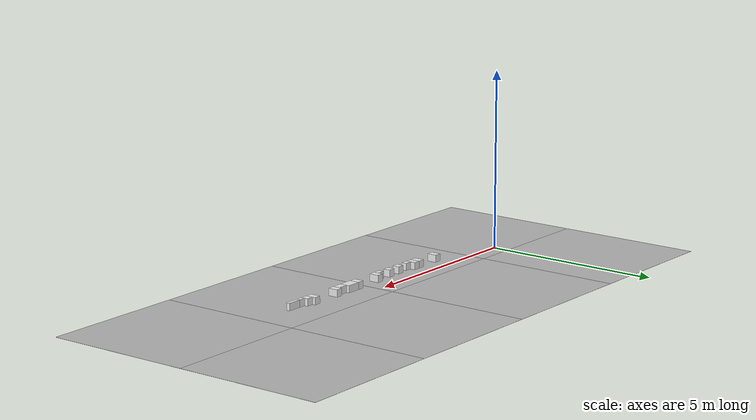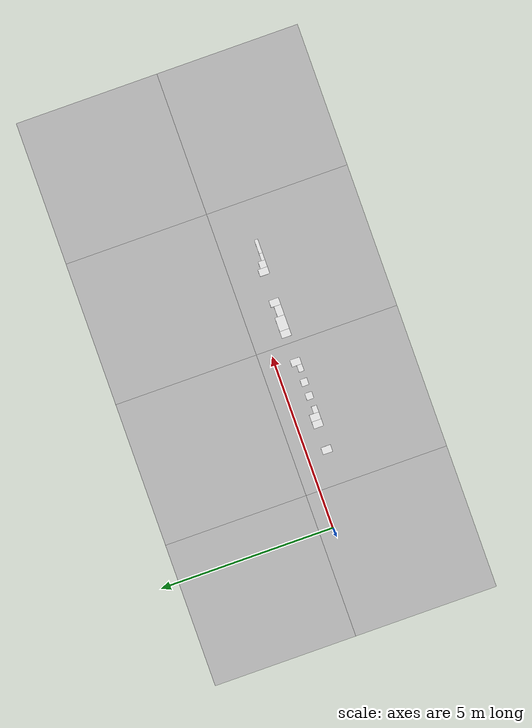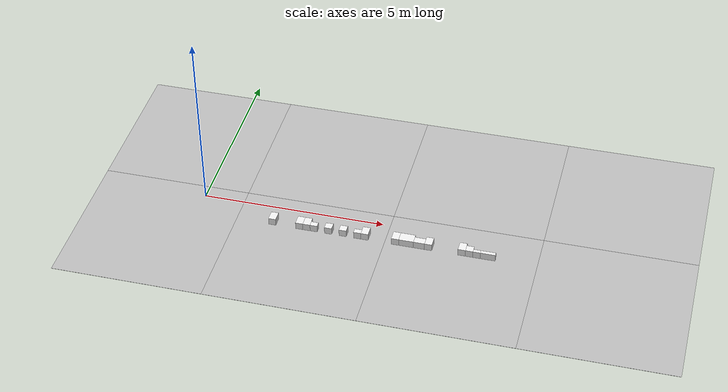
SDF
<sdf version='1.6'><world name='default'>
    <light name='sun_light' type='directional'>
      <pose frame=''>0 0 10 0 -0 0</pose>
      <diffuse>0.5 0.5 0.5 1</diffuse>
      <specular>0.1 0.1 0.1 1</specular>
      <direction>0.1 0.1 -0.9</direction>
      <attenuation>
        <range>20</range>
        <constant>0.5</constant>
        <linear>0.01</linear>
        <quadratic>0.001</quadratic>
      </attenuation>
      <cast_shadows>1</cast_shadows>
    </light>

    <model name='Tile/0-0'>
      <static>1</static>
      <link name='link'>
        <collision name='collision'>
          <geometry>
            <plane>
              <normal>0 0 1</normal>
              <size>4.096 4.096</size>
            </plane>
          </geometry>
          <surface>
            <friction>
              <ode>
                <mu>100</mu>
                <mu2>50</mu2>
              </ode>
              <torsional>
                <ode/>
              </torsional>
            </friction>
            <contact>
              <ode/>
            </contact>
            <bounce/>
          </surface>
          <max_contacts>10</max_contacts>
        </collision>
        <visual name='visual'>
          <cast_shadows>0</cast_shadows>
          <geometry>
            <plane>
              <normal>0 0 1</normal>
              <size>4.096 4.096</size>
            </plane>
          </geometry>
          <material>
            <script>
              <uri>file://materials/scripts</uri>
              <uri>file://materials/textures</uri>
              <name>Tile/aa44efc093d15b0d016b671cb8dad8b9b5925cd42bc6b331ef31decf4ba6863e</name>
            </script>
          </material>
        </visual>
        <self_collide>0</self_collide>
        <enable_wind>0</enable_wind>
        <kinematic>0</kinematic>
      </link>
      <pose frame=''>-0.952 -1.6520000000000001 0 0 -0 0</pose>
    </model>

    <model name='Tile/0-1'>
      <static>1</static>
      <link name='link'>
        <collision name='collision'>
          <geometry>
            <plane>
              <normal>0 0 1</normal>
              <size>4.096 4.096</size>
            </plane>
          </geometry>
          <surface>
            <friction>
              <ode>
                <mu>100</mu>
                <mu2>50</mu2>
              </ode>
              <torsional>
                <ode/>
              </torsional>
            </friction>
            <contact>
              <ode/>
            </contact>
            <bounce/>
          </surface>
          <max_contacts>10</max_contacts>
        </collision>
        <visual name='visual'>
          <cast_shadows>0</cast_shadows>
          <geometry>
            <plane>
              <normal>0 0 1</normal>
              <size>4.096 4.096</size>
            </plane>
          </geometry>
          <material>
            <script>
              <uri>file://materials/scripts</uri>
              <uri>file://materials/textures</uri>
              <name>Tile/6681b896b1587d54cb69aadeb5fb7247b4d6d500490292053e67105ac88ca889</name>
            </script>
          </material>
        </visual>
        <self_collide>0</self_collide>
        <enable_wind>0</enable_wind>
        <kinematic>0</kinematic>
      </link>
      <pose frame=''>-0.952 2.444 0 0 -0 0</pose>
    </model>

    <model name='Tile/1-0'>
      <static>1</static>
      <link name='link'>
        <collision name='collision'>
          <geometry>
            <plane>
              <normal>0 0 1</normal>
              <size>4.096 4.096</size>
            </plane>
          </geometry>
          <surface>
            <friction>
              <ode>
                <mu>100</mu>
                <mu2>50</mu2>
              </ode>
              <torsional>
                <ode/>
              </torsional>
            </friction>
            <contact>
              <ode/>
            </contact>
            <bounce/>
          </surface>
          <max_contacts>10</max_contacts>
        </collision>
        <visual name='visual'>
          <cast_shadows>0</cast_shadows>
          <geometry>
            <plane>
              <normal>0 0 1</normal>
              <size>4.096 4.096</size>
            </plane>
          </geometry>
          <material>
            <script>
              <uri>file://materials/scripts</uri>
              <uri>file://materials/textures</uri>
              <name>Tile/92f43ed858476f4499381661bcad95d6a361710fe83d9706dd00032cdcb4662a</name>
            </script>
          </material>
        </visual>
        <self_collide>0</self_collide>
        <enable_wind>0</enable_wind>
        <kinematic>0</kinematic>
      </link>
      <pose frame=''>3.144 -1.6520000000000001 0 0 -0 0</pose>
    </model>

    <model name='Tile/1-1'>
      <static>1</static>
      <link name='link'>
        <collision name='collision'>
          <geometry>
            <plane>
              <normal>0 0 1</normal>
              <size>4.096 4.096</size>
            </plane>
          </geometry>
          <surface>
            <friction>
              <ode>
                <mu>100</mu>
                <mu2>50</mu2>
              </ode>
              <torsional>
                <ode/>
              </torsional>
            </friction>
            <contact>
              <ode/>
            </contact>
            <bounce/>
          </surface>
          <max_contacts>10</max_contacts>
        </collision>
        <visual name='visual'>
          <cast_shadows>0</cast_shadows>
          <geometry>
            <plane>
              <normal>0 0 1</normal>
              <size>4.096 4.096</size>
            </plane>
          </geometry>
          <material>
            <script>
              <uri>file://materials/scripts</uri>
              <uri>file://materials/textures</uri>
              <name>Tile/13957a6de1f2afce18d7f1f64dacc2f21295e26ccf498256b0e1a51002cd5706</name>
            </script>
          </material>
        </visual>
        <self_collide>0</self_collide>
        <enable_wind>0</enable_wind>
        <kinematic>0</kinematic>
      </link>
      <pose frame=''>3.144 2.444 0 0 -0 0</pose>
    </model>

    <model name='Tile/2-0'>
      <static>1</static>
      <link name='link'>
        <collision name='collision'>
          <geometry>
            <plane>
              <normal>0 0 1</normal>
              <size>4.096 4.096</size>
            </plane>
          </geometry>
          <surface>
            <friction>
              <ode>
                <mu>100</mu>
                <mu2>50</mu2>
              </ode>
              <torsional>
                <ode/>
              </torsional>
            </friction>
            <contact>
              <ode/>
            </contact>
            <bounce/>
          </surface>
          <max_contacts>10</max_contacts>
        </collision>
        <visual name='visual'>
          <cast_shadows>0</cast_shadows>
          <geometry>
            <plane>
              <normal>0 0 1</normal>
              <size>4.096 4.096</size>
            </plane>
          </geometry>
          <material>
            <script>
              <uri>file://materials/scripts</uri>
              <uri>file://materials/textures</uri>
              <name>Tile/b59cdc536506c2482670cfcc56b0308cddc99f1ab95081ce2a9d86e03792a296</name>
            </script>
          </material>
        </visual>
        <self_collide>0</self_collide>
        <enable_wind>0</enable_wind>
        <kinematic>0</kinematic>
      </link>
      <pose frame=''>7.24 -1.6520000000000001 0 0 -0 0</pose>
    </model>

    <model name='Tile/2-1'>
      <static>1</static>
      <link name='link'>
        <collision name='collision'>
          <geometry>
            <plane>
              <normal>0 0 1</normal>
              <size>4.096 4.096</size>
            </plane>
          </geometry>
          <surface>
            <friction>
              <ode>
                <mu>100</mu>
                <mu2>50</mu2>
              </ode>
              <torsional>
                <ode/>
              </torsional>
            </friction>
            <contact>
              <ode/>
            </contact>
            <bounce/>
          </surface>
          <max_contacts>10</max_contacts>
        </collision>
        <visual name='visual'>
          <cast_shadows>0</cast_shadows>
          <geometry>
            <plane>
              <normal>0 0 1</normal>
              <size>4.096 4.096</size>
            </plane>
          </geometry>
          <material>
            <script>
              <uri>file://materials/scripts</uri>
              <uri>file://materials/textures</uri>
              <name>Tile/13957a6de1f2afce18d7f1f64dacc2f21295e26ccf498256b0e1a51002cd5706</name>
            </script>
          </material>
        </visual>
        <self_collide>0</self_collide>
        <enable_wind>0</enable_wind>
        <kinematic>0</kinematic>
      </link>
      <pose frame=''>7.24 2.444 0 0 -0 0</pose>
    </model>

    <model name='Tile/3-0'>
      <static>1</static>
      <link name='link'>
        <collision name='collision'>
          <geometry>
            <plane>
              <normal>0 0 1</normal>
              <size>4.096 4.096</size>
            </plane>
          </geometry>
          <surface>
            <friction>
              <ode>
                <mu>100</mu>
                <mu2>50</mu2>
              </ode>
              <torsional>
                <ode/>
              </torsional>
            </friction>
            <contact>
              <ode/>
            </contact>
            <bounce/>
          </surface>
          <max_contacts>10</max_contacts>
        </collision>
        <visual name='visual'>
          <cast_shadows>0</cast_shadows>
          <geometry>
            <plane>
              <normal>0 0 1</normal>
              <size>4.096 4.096</size>
            </plane>
          </geometry>
          <material>
            <script>
              <uri>file://materials/scripts</uri>
              <uri>file://materials/textures</uri>
              <name>Tile/51d233b85cde462f4055010ae3425bc9865214a12565d0ea43b0c4c1eb77e453</name>
            </script>
          </material>
        </visual>
        <self_collide>0</self_collide>
        <enable_wind>0</enable_wind>
        <kinematic>0</kinematic>
      </link>
      <pose frame=''>11.336 -1.6520000000000001 0 0 -0 0</pose>
    </model>

    <model name='Tile/3-1'>
      <static>1</static>
      <link name='link'>
        <collision name='collision'>
          <geometry>
            <plane>
              <normal>0 0 1</normal>
              <size>4.096 4.096</size>
            </plane>
          </geometry>
          <surface>
            <friction>
              <ode>
                <mu>100</mu>
                <mu2>50</mu2>
              </ode>
              <torsional>
                <ode/>
              </torsional>
            </friction>
            <contact>
              <ode/>
            </contact>
            <bounce/>
          </surface>
          <max_contacts>10</max_contacts>
        </collision>
        <visual name='visual'>
          <cast_shadows>0</cast_shadows>
          <geometry>
            <plane>
              <normal>0 0 1</normal>
              <size>4.096 4.096</size>
            </plane>
          </geometry>
          <material>
            <script>
              <uri>file://materials/scripts</uri>
              <uri>file://materials/textures</uri>
              <name>Tile/411268dc0bdaaa82f6734e64b6a3a6cf1dd292dfc683d008b9b3f96255a1e28b</name>
            </script>
          </material>
        </visual>
        <self_collide>0</self_collide>
        <enable_wind>0</enable_wind>
        <kinematic>0</kinematic>
      </link>
      <pose frame=''>11.336 2.444 0 0 -0 0</pose>
    </model>

    <model name='Obstacle/-5/0'>
      <pose frame=''>2.1 -0.5599999999999999 0.1 0 0 -0.0</pose>
      <link name='link'>
        <inertial>
          <mass>10</mass>
          <inertia>
            <ixx>0.166667</ixx>
            <ixy>0</ixy>
            <ixz>0</ixz>
            <iyy>0.166667</iyy>
            <iyz>0</iyz>
            <izz>0.166667</izz>
          </inertia>
        </inertial>
        <collision name='collision'>
          <geometry>
            <box>
              <size>0.2 0.28 0.2</size>
            </box>
          </geometry>
          <max_contacts>10</max_contacts>
          <surface>
            <contact>
              <ode/>
            </contact>
            <bounce/>
            <friction>
              <torsional>
                <ode/>
              </torsional>
              <ode/>
            </friction>
          </surface>
        </collision>
        <visual name='visual'>
          <geometry>
            <box>
              <size>0.2 0.28 0.2</size>
            </box>
          </geometry>
          <material>
            <script>
              <name>Gazebo/White</name>
              <uri>file://media/materials/scripts/gazebo.material</uri>
            </script>
          </material>
        </visual>
        <self_collide>0</self_collide>
        <enable_wind>0</enable_wind>
        <kinematic>0</kinematic>
      </link>
    </model>

    <model name='Obstacle/-12/0'>
      <pose frame=''>2.85 -0.5599999999999999 0.1 0 0 -0.0</pose>
      <link name='link'>
        <inertial>
          <mass>10</mass>
          <inertia>
            <ixx>0.166667</ixx>
            <ixy>0</ixy>
            <ixz>0</ixz>
            <iyy>0.166667</iyy>
            <iyz>0</iyz>
            <izz>0.166667</izz>
          </inertia>
        </inertial>
        <collision name='collision'>
          <geometry>
            <box>
              <size>0.2 0.28 0.2</size>
            </box>
          </geometry>
          <max_contacts>10</max_contacts>
          <surface>
            <contact>
              <ode/>
            </contact>
            <bounce/>
            <friction>
              <torsional>
                <ode/>
              </torsional>
              <ode/>
            </friction>
          </surface>
        </collision>
        <visual name='visual'>
          <geometry>
            <box>
              <size>0.2 0.28 0.2</size>
            </box>
          </geometry>
          <material>
            <script>
              <name>Gazebo/White</name>
              <uri>file://media/materials/scripts/gazebo.material</uri>
            </script>
          </material>
        </visual>
        <self_collide>0</self_collide>
        <enable_wind>0</enable_wind>
        <kinematic>0</kinematic>
      </link>
    </model>

    <model name='Obstacle/-16/0'>
      <pose frame=''>3.0500000000000003 -0.5599999999999999 0.1 0 0 -0.0</pose>
      <link name='link'>
        <inertial>
          <mass>10</mass>
          <inertia>
            <ixx>0.166667</ixx>
            <ixy>0</ixy>
            <ixz>0</ixz>
            <iyy>0.166667</iyy>
            <iyz>0</iyz>
            <izz>0.166667</izz>
          </inertia>
        </inertial>
        <collision name='collision'>
          <geometry>
            <box>
              <size>0.2 0.28 0.2</size>
            </box>
          </geometry>
          <max_contacts>10</max_contacts>
          <surface>
            <contact>
              <ode/>
            </contact>
            <bounce/>
            <friction>
              <torsional>
                <ode/>
              </torsional>
              <ode/>
            </friction>
          </surface>
        </collision>
        <visual name='visual'>
          <geometry>
            <box>
              <size>0.2 0.28 0.2</size>
            </box>
          </geometry>
          <material>
            <script>
              <name>Gazebo/White</name>
              <uri>file://media/materials/scripts/gazebo.material</uri>
            </script>
          </material>
        </visual>
        <self_collide>0</self_collide>
        <enable_wind>0</enable_wind>
        <kinematic>0</kinematic>
      </link>
    </model>

    <model name='Obstacle/-20/0'>
      <pose frame=''>3.2500000000000004 -0.625 0.1 0 0 -0.0</pose>
      <link name='link'>
        <inertial>
          <mass>10</mass>
          <inertia>
            <ixx>0.166667</ixx>
            <ixy>0</ixy>
            <ixz>0</ixz>
            <iyy>0.166667</iyy>
            <iyz>0</iyz>
            <izz>0.166667</izz>
          </inertia>
        </inertial>
        <collision name='collision'>
          <geometry>
            <box>
              <size>0.2 0.15 0.2</size>
            </box>
          </geometry>
          <max_contacts>10</max_contacts>
          <surface>
            <contact>
              <ode/>
            </contact>
            <bounce/>
            <friction>
              <torsional>
                <ode/>
              </torsional>
              <ode/>
            </friction>
          </surface>
        </collision>
        <visual name='visual'>
          <geometry>
            <box>
              <size>0.2 0.15 0.2</size>
            </box>
          </geometry>
          <material>
            <script>
              <name>Gazebo/White</name>
              <uri>file://media/materials/scripts/gazebo.material</uri>
            </script>
          </material>
        </visual>
        <self_collide>0</self_collide>
        <enable_wind>0</enable_wind>
        <kinematic>0</kinematic>
      </link>
    </model>

    <model name='Obstacle/-27/0'>
      <pose frame=''>3.650000000000001 -0.6 0.1 0 0 -0.0</pose>
      <link name='link'>
        <inertial>
          <mass>10</mass>
          <inertia>
            <ixx>0.166667</ixx>
            <ixy>0</ixy>
            <ixz>0</ixz>
            <iyy>0.166667</iyy>
            <iyz>0</iyz>
            <izz>0.166667</izz>
          </inertia>
        </inertial>
        <collision name='collision'>
          <geometry>
            <box>
              <size>0.2 0.2 0.2</size>
            </box>
          </geometry>
          <max_contacts>10</max_contacts>
          <surface>
            <contact>
              <ode/>
            </contact>
            <bounce/>
            <friction>
              <torsional>
                <ode/>
              </torsional>
              <ode/>
            </friction>
          </surface>
        </collision>
        <visual name='visual'>
          <geometry>
            <box>
              <size>0.2 0.2 0.2</size>
            </box>
          </geometry>
          <material>
            <script>
              <name>Gazebo/White</name>
              <uri>file://media/materials/scripts/gazebo.material</uri>
            </script>
          </material>
        </visual>
        <self_collide>0</self_collide>
        <enable_wind>0</enable_wind>
        <kinematic>0</kinematic>
      </link>
    </model>

    <model name='Obstacle/-34/0'>
      <pose frame=''>4.050000000000001 -0.6 0.1 0 0 -0.0</pose>
      <link name='link'>
        <inertial>
          <mass>10</mass>
          <inertia>
            <ixx>0.166667</ixx>
            <ixy>0</ixy>
            <ixz>0</ixz>
            <iyy>0.166667</iyy>
            <iyz>0</iyz>
            <izz>0.166667</izz>
          </inertia>
        </inertial>
        <collision name='collision'>
          <geometry>
            <box>
              <size>0.2 0.2 0.2</size>
            </box>
          </geometry>
          <max_contacts>10</max_contacts>
          <surface>
            <contact>
              <ode/>
            </contact>
            <bounce/>
            <friction>
              <torsional>
                <ode/>
              </torsional>
              <ode/>
            </friction>
          </surface>
        </collision>
        <visual name='visual'>
          <geometry>
            <box>
              <size>0.2 0.2 0.2</size>
            </box>
          </geometry>
          <material>
            <script>
              <name>Gazebo/White</name>
              <uri>file://media/materials/scripts/gazebo.material</uri>
            </script>
          </material>
        </visual>
        <self_collide>0</self_collide>
        <enable_wind>0</enable_wind>
        <kinematic>0</kinematic>
      </link>
    </model>

    <model name='Obstacle/-41/0'>
      <pose frame=''>4.450000000000001 -0.625 0.1 0 0 -0.0</pose>
      <link name='link'>
        <inertial>
          <mass>10</mass>
          <inertia>
            <ixx>0.166667</ixx>
            <ixy>0</ixy>
            <ixz>0</ixz>
            <iyy>0.166667</iyy>
            <iyz>0</iyz>
            <izz>0.166667</izz>
          </inertia>
        </inertial>
        <collision name='collision'>
          <geometry>
            <box>
              <size>0.2 0.15 0.2</size>
            </box>
          </geometry>
          <max_contacts>10</max_contacts>
          <surface>
            <contact>
              <ode/>
            </contact>
            <bounce/>
            <friction>
              <torsional>
                <ode/>
              </torsional>
              <ode/>
            </friction>
          </surface>
        </collision>
        <visual name='visual'>
          <geometry>
            <box>
              <size>0.2 0.15 0.2</size>
            </box>
          </geometry>
          <material>
            <script>
              <name>Gazebo/White</name>
              <uri>file://media/materials/scripts/gazebo.material</uri>
            </script>
          </material>
        </visual>
        <self_collide>0</self_collide>
        <enable_wind>0</enable_wind>
        <kinematic>0</kinematic>
      </link>
    </model>

    <model name='Obstacle/-45/0'>
      <pose frame=''>4.650000000000001 -0.5599999999999999 0.1 0 0 -0.0</pose>
      <link name='link'>
        <inertial>
          <mass>10</mass>
          <inertia>
            <ixx>0.166667</ixx>
            <ixy>0</ixy>
            <ixz>0</ixz>
            <iyy>0.166667</iyy>
            <iyz>0</iyz>
            <izz>0.166667</izz>
          </inertia>
        </inertial>
        <collision name='collision'>
          <geometry>
            <box>
              <size>0.2 0.28 0.2</size>
            </box>
          </geometry>
          <max_contacts>10</max_contacts>
          <surface>
            <contact>
              <ode/>
            </contact>
            <bounce/>
            <friction>
              <torsional>
                <ode/>
              </torsional>
              <ode/>
            </friction>
          </surface>
        </collision>
        <visual name='visual'>
          <geometry>
            <box>
              <size>0.2 0.28 0.2</size>
            </box>
          </geometry>
          <material>
            <script>
              <name>Gazebo/White</name>
              <uri>file://media/materials/scripts/gazebo.material</uri>
            </script>
          </material>
        </visual>
        <self_collide>0</self_collide>
        <enable_wind>0</enable_wind>
        <kinematic>0</kinematic>
      </link>
    </model>

    <model name='Obstacle/-52/0'>
      <pose frame=''>5.480000000000001 -0.5599999999999999 0.1 0 0 -0.0</pose>
      <link name='link'>
        <inertial>
          <mass>10</mass>
          <inertia>
            <ixx>0.166667</ixx>
            <ixy>0</ixy>
            <ixz>0</ixz>
            <iyy>0.166667</iyy>
            <iyz>0</iyz>
            <izz>0.166667</izz>
          </inertia>
        </inertial>
        <collision name='collision'>
          <geometry>
            <box>
              <size>0.2 0.28 0.2</size>
            </box>
          </geometry>
          <max_contacts>10</max_contacts>
          <surface>
            <contact>
              <ode/>
            </contact>
            <bounce/>
            <friction>
              <torsional>
                <ode/>
              </torsional>
              <ode/>
            </friction>
          </surface>
        </collision>
        <visual name='visual'>
          <geometry>
            <box>
              <size>0.2 0.28 0.2</size>
            </box>
          </geometry>
          <material>
            <script>
              <name>Gazebo/White</name>
              <uri>file://media/materials/scripts/gazebo.material</uri>
            </script>
          </material>
        </visual>
        <self_collide>0</self_collide>
        <enable_wind>0</enable_wind>
        <kinematic>0</kinematic>
      </link>
    </model>

    <model name='Obstacle/-56/0'>
      <pose frame=''>5.780000000000002 -0.5599999999999999 0.1 0 0 -0.0</pose>
      <link name='link'>
        <inertial>
          <mass>10</mass>
          <inertia>
            <ixx>0.166667</ixx>
            <ixy>0</ixy>
            <ixz>0</ixz>
            <iyy>0.166667</iyy>
            <iyz>0</iyz>
            <izz>0.166667</izz>
          </inertia>
        </inertial>
        <collision name='collision'>
          <geometry>
            <box>
              <size>0.4 0.28 0.2</size>
            </box>
          </geometry>
          <max_contacts>10</max_contacts>
          <surface>
            <contact>
              <ode/>
            </contact>
            <bounce/>
            <friction>
              <torsional>
                <ode/>
              </torsional>
              <ode/>
            </friction>
          </surface>
        </collision>
        <visual name='visual'>
          <geometry>
            <box>
              <size>0.4 0.28 0.2</size>
            </box>
          </geometry>
          <material>
            <script>
              <name>Gazebo/White</name>
              <uri>file://media/materials/scripts/gazebo.material</uri>
            </script>
          </material>
        </visual>
        <self_collide>0</self_collide>
        <enable_wind>0</enable_wind>
        <kinematic>0</kinematic>
      </link>
    </model>

    <model name='Obstacle/-60/0'>
      <pose frame=''>6.130000000000003 -0.6 0.1 0 0 -0.0</pose>
      <link name='link'>
        <inertial>
          <mass>10</mass>
          <inertia>
            <ixx>0.166667</ixx>
            <ixy>0</ixy>
            <ixz>0</ixz>
            <iyy>0.166667</iyy>
            <iyz>0</iyz>
            <izz>0.166667</izz>
          </inertia>
        </inertial>
        <collision name='collision'>
          <geometry>
            <box>
              <size>0.3 0.2 0.2</size>
            </box>
          </geometry>
          <max_contacts>10</max_contacts>
          <surface>
            <contact>
              <ode/>
            </contact>
            <bounce/>
            <friction>
              <torsional>
                <ode/>
              </torsional>
              <ode/>
            </friction>
          </surface>
        </collision>
        <visual name='visual'>
          <geometry>
            <box>
              <size>0.3 0.2 0.2</size>
            </box>
          </geometry>
          <material>
            <script>
              <name>Gazebo/White</name>
              <uri>file://media/materials/scripts/gazebo.material</uri>
            </script>
          </material>
        </visual>
        <self_collide>0</self_collide>
        <enable_wind>0</enable_wind>
        <kinematic>0</kinematic>
      </link>
    </model>

    <model name='Obstacle/-64/0'>
      <pose frame=''>6.380000000000002 -0.5599999999999999 0.1 0 0 -0.0</pose>
      <link name='link'>
        <inertial>
          <mass>10</mass>
          <inertia>
            <ixx>0.166667</ixx>
            <ixy>0</ixy>
            <ixz>0</ixz>
            <iyy>0.166667</iyy>
            <iyz>0</iyz>
            <izz>0.166667</izz>
          </inertia>
        </inertial>
        <collision name='collision'>
          <geometry>
            <box>
              <size>0.2 0.28 0.2</size>
            </box>
          </geometry>
          <max_contacts>10</max_contacts>
          <surface>
            <contact>
              <ode/>
            </contact>
            <bounce/>
            <friction>
              <torsional>
                <ode/>
              </torsional>
              <ode/>
            </friction>
          </surface>
        </collision>
        <visual name='visual'>
          <geometry>
            <box>
              <size>0.2 0.28 0.2</size>
            </box>
          </geometry>
          <material>
            <script>
              <name>Gazebo/White</name>
              <uri>file://media/materials/scripts/gazebo.material</uri>
            </script>
          </material>
        </visual>
        <self_collide>0</self_collide>
        <enable_wind>0</enable_wind>
        <kinematic>0</kinematic>
      </link>
    </model>

    <model name='Obstacle/-71/0'>
      <pose frame=''>7.280000000000002 -0.5599999999999999 0.1 0 0 -0.0</pose>
      <link name='link'>
        <inertial>
          <mass>10</mass>
          <inertia>
            <ixx>0.166667</ixx>
            <ixy>0</ixy>
            <ixz>0</ixz>
            <iyy>0.166667</iyy>
            <iyz>0</iyz>
            <izz>0.166667</izz>
          </inertia>
        </inertial>
        <collision name='collision'>
          <geometry>
            <box>
              <size>0.2 0.28 0.2</size>
            </box>
          </geometry>
          <max_contacts>10</max_contacts>
          <surface>
            <contact>
              <ode/>
            </contact>
            <bounce/>
            <friction>
              <torsional>
                <ode/>
              </torsional>
              <ode/>
            </friction>
          </surface>
        </collision>
        <visual name='visual'>
          <geometry>
            <box>
              <size>0.2 0.28 0.2</size>
            </box>
          </geometry>
          <material>
            <script>
              <name>Gazebo/White</name>
              <uri>file://media/materials/scripts/gazebo.material</uri>
            </script>
          </material>
        </visual>
        <self_collide>0</self_collide>
        <enable_wind>0</enable_wind>
        <kinematic>0</kinematic>
      </link>
    </model>

    <model name='Obstacle/-75/0'>
      <pose frame=''>7.480000000000002 -0.6 0.1 0 0 -0.0</pose>
      <link name='link'>
        <inertial>
          <mass>10</mass>
          <inertia>
            <ixx>0.166667</ixx>
            <ixy>0</ixy>
            <ixz>0</ixz>
            <iyy>0.166667</iyy>
            <iyz>0</iyz>
            <izz>0.166667</izz>
          </inertia>
        </inertial>
        <collision name='collision'>
          <geometry>
            <box>
              <size>0.2 0.2 0.2</size>
            </box>
          </geometry>
          <max_contacts>10</max_contacts>
          <surface>
            <contact>
              <ode/>
            </contact>
            <bounce/>
            <friction>
              <torsional>
                <ode/>
              </torsional>
              <ode/>
            </friction>
          </surface>
        </collision>
        <visual name='visual'>
          <geometry>
            <box>
              <size>0.2 0.2 0.2</size>
            </box>
          </geometry>
          <material>
            <script>
              <name>Gazebo/White</name>
              <uri>file://media/materials/scripts/gazebo.material</uri>
            </script>
          </material>
        </visual>
        <self_collide>0</self_collide>
        <enable_wind>0</enable_wind>
        <kinematic>0</kinematic>
      </link>
    </model>

    <model name='Obstacle/-79/0'>
      <pose frame=''>7.680000000000002 -0.6499999999999999 0.1 0 0 -0.0</pose>
      <link name='link'>
        <inertial>
          <mass>10</mass>
          <inertia>
            <ixx>0.166667</ixx>
            <ixy>0</ixy>
            <ixz>0</ixz>
            <iyy>0.166667</iyy>
            <iyz>0</iyz>
            <izz>0.166667</izz>
          </inertia>
        </inertial>
        <collision name='collision'>
          <geometry>
            <box>
              <size>0.2 0.1 0.2</size>
            </box>
          </geometry>
          <max_contacts>10</max_contacts>
          <surface>
            <contact>
              <ode/>
            </contact>
            <bounce/>
            <friction>
              <torsional>
                <ode/>
              </torsional>
              <ode/>
            </friction>
          </surface>
        </collision>
        <visual name='visual'>
          <geometry>
            <box>
              <size>0.2 0.1 0.2</size>
            </box>
          </geometry>
          <material>
            <script>
              <name>Gazebo/White</name>
              <uri>file://media/materials/scripts/gazebo.material</uri>
            </script>
          </material>
        </visual>
        <self_collide>0</self_collide>
        <enable_wind>0</enable_wind>
        <kinematic>0</kinematic>
      </link>
    </model>

    <model name='Obstacle/-83/0'>
      <pose frame=''>7.980000000000003 -0.6499999999999999 0.1 0 0 -0.0</pose>
      <link name='link'>
        <inertial>
          <mass>10</mass>
          <inertia>
            <ixx>0.166667</ixx>
            <ixy>0</ixy>
            <ixz>0</ixz>
            <iyy>0.166667</iyy>
            <iyz>0</iyz>
            <izz>0.166667</izz>
          </inertia>
        </inertial>
        <collision name='collision'>
          <geometry>
            <box>
              <size>0.4 0.1 0.2</size>
            </box>
          </geometry>
          <max_contacts>10</max_contacts>
          <surface>
            <contact>
              <ode/>
            </contact>
            <bounce/>
            <friction>
              <torsional>
                <ode/>
              </torsional>
              <ode/>
            </friction>
          </surface>
        </collision>
        <visual name='visual'>
          <geometry>
            <box>
              <size>0.4 0.1 0.2</size>
            </box>
          </geometry>
          <material>
            <script>
              <name>Gazebo/White</name>
              <uri>file://media/materials/scripts/gazebo.material</uri>
            </script>
          </material>
        </visual>
        <self_collide>0</self_collide>
        <enable_wind>0</enable_wind>
        <kinematic>0</kinematic>
      </link>
    </model>
    </world></sdf>
